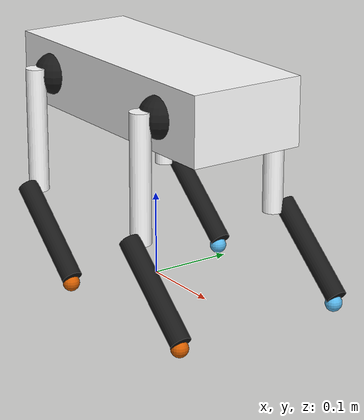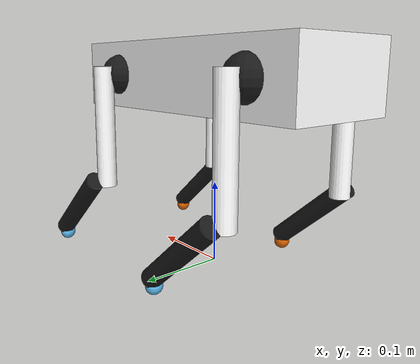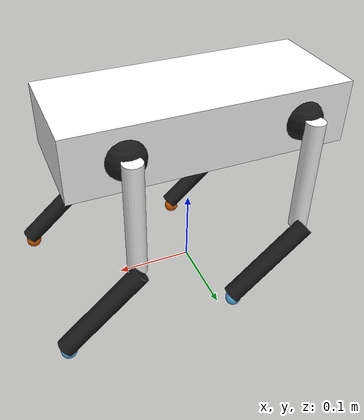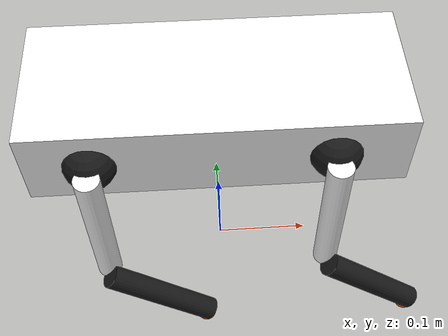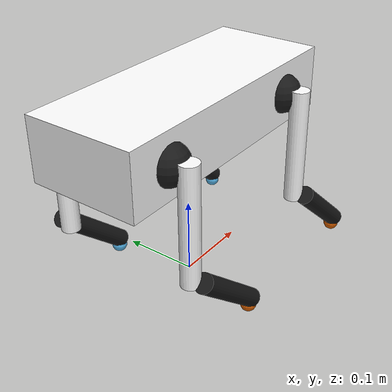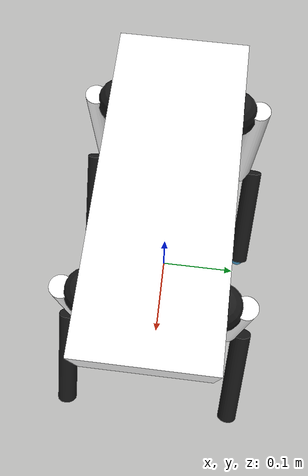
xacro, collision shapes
<?xml version="1.0"?>
<robot name="jax" xmlns:xacro="http://www.ros.org/wiki/xacro">

  <material name="black"><color rgba="0.1 0.1 0.1 1"/></material>
  <material name="white"><color rgba="1 1 1 1"/></material>

  <link name="world"/>

  <joint name="world_to_base" type="fixed">
    <parent link="world"/>
    <child link="base_link"/>
    <origin xyz="0 0 0.23"/>
  </joint>

  <link name="base_link">
    <visual>
      <geometry><mesh filename="package://jax_description/meshes/base_link.stl" scale=".001 .001 .001"/></geometry>
      <material name="white"/>
    </visual>
    <collision>
      <geometry><box size="0.35 0.14 0.08"/></geometry>
    </collision>
    <inertial>
      <mass value="4.0"/>
      <inertia ixx="0.03" iyy="0.06" izz="0.07" ixy="0" ixz="0" iyz="0"/>
    </inertial>
  </link>

  <xacro:macro name="jax_leg" params="prefix x_reflect y_reflect side">

    <link name="${prefix}_hip">
      <visual>
        <origin xyz="0 ${0.01 * y_reflect} 0.01"/>
        <geometry><mesh filename="package://jax_description/meshes/${side}_hip.stl" scale=".001 .001 .001"/></geometry>
        <material name="black"/>
      </visual>
      <collision>
        <origin xyz="0 ${-0.02 * y_reflect} 0"/>
        <geometry><sphere radius="0.025"/></geometry>
      </collision>
      <inertial>
        <mass value="0.15"/>
        <origin xyz="0 ${-0.02 * y_reflect} 0"/>
        <inertia ixx="0.0002" iyy="0.0002" izz="0.0002" ixy="0" ixz="0" iyz="0"/>
      </inertial>
    </link>

    <joint name="${prefix}_hip_joint" type="revolute">
      <parent link="base_link"/>
      <child link="${prefix}_hip"/>
     <origin xyz="${(0.11 * x_reflect) -.005} ${0.085 * y_reflect} 0.0"/>
      <axis xyz="1 0 0"/>
      <limit lower="-0.6" upper="0.6" effort="2.0" velocity="1.5"/>
      <dynamics damping="0.5" friction="0.0"/>
    </joint>

    <link name="${prefix}_thigh">
      <visual>
        <origin xyz="0 ${-0.038 * y_reflect} 0"/>
        <geometry><mesh filename="package://jax_description/meshes/${side}_thigh.stl" scale=".001 .001 .001"/></geometry>
        <material name="white"/>
      </visual>
      <collision>
        <origin xyz="0 ${-0.039 * y_reflect} -0.065"/>
        <geometry><cylinder radius="0.012" length="0.15"/></geometry>
      </collision>
      <inertial>
        <mass value="0.35"/>
        <origin xyz="0 ${-0.039 * y_reflect} -0.065"/>
        <inertia ixx="0.001" iyy="0.001" izz="0.0003" ixy="0" ixz="0" iyz="0"/>
      </inertial>
    </link>

    <joint name="${prefix}_thigh_joint" type="revolute">
      <parent link="${prefix}_hip"/>
      <child link="${prefix}_thigh"/>
      <origin xyz="0 ${0.045 * y_reflect} 0"/>
      <axis xyz="0 -1 0"/>
      <limit lower="-1.2" upper="1.2" effort="3.0" velocity="2.0"/>
      <dynamics damping="0.7" friction="0.0"/>
    </joint>

    <link name="${prefix}_calf">
      <visual>
        <origin xyz="0 ${-0.048 * y_reflect} 0"/>
        <geometry><mesh filename="package://jax_description/meshes/${side}_calf.stl" scale=".001 .001 .001"/></geometry>
        <material name="black"/>
      </visual>
      <collision>
        <origin xyz="0.05 ${-0.043 * y_reflect} -0.045" rpy="0 -0.85 0"/>
        <geometry><cylinder radius="0.012" length="0.13"/></geometry>
      </collision>
      <inertial>
        <mass value="0.25"/>
        <origin xyz="0.05 ${-0.043 * y_reflect} -0.045" rpy="0 -0.85 0"/>
        <inertia ixx="0.0007" iyy="0.0007" izz="0.0002" ixy="0" ixz="0" iyz="0"/>
      </inertial>
    </link>

    <joint name="${prefix}_knee_joint" type="revolute">
      <parent link="${prefix}_thigh"/>
      <child link="${prefix}_calf"/>
      <origin xyz="0 ${0.02 * y_reflect} -0.13"/>
      <axis xyz="0 -1 0"/>
      <limit lower="0" upper="1.4" effort="4.0" velocity="2.5"/>
      <dynamics damping="0.9" friction="0.0"/>
    </joint>

    <link name="${prefix}_foot">
      <collision>
        <origin xyz="0 0 0.005"/>
        <geometry><sphere radius="0.010"/></geometry>
      </collision>
    </link>

    <joint name="${prefix}_foot_fixed_joint" type="fixed">
      <parent link="${prefix}_calf"/>
      <child link="${prefix}_foot"/>
      <origin xyz="0.095 ${-0.044 * y_reflect} -0.1"/>
    </joint>

    <gazebo reference="${prefix}_foot">
      <mu1>1.2</mu1><mu2>1.2</mu2>
      <kp>100000.0</kp><kd>100.0</kd>
    </gazebo>
  </xacro:macro>

  <xacro:jax_leg prefix="front_right" x_reflect="1" y_reflect="-1" side="right"/>
  <xacro:jax_leg prefix="front_left" x_reflect="1" y_reflect="1" side="left"/>
  <xacro:jax_leg prefix="rear_right" x_reflect="-1" y_reflect="-1" side="right"/>
  <xacro:jax_leg prefix="rear_left" x_reflect="-1" y_reflect="1" side="left"/>

  <ros2_control name="JaxGazeboSystem" type="system">
    <hardware>
      <plugin>ign_ros2_control/IgnitionSystem</plugin>
    </hardware>
    <xacro:macro name="joint_interface" params="name">
      <joint name="${name}">
        <command_interface name="position"/>
        <state_interface name="position"/>
        <state_interface name="velocity"/>
      </joint>
    </xacro:macro>

    <xacro:joint_interface name="front_right_hip_joint"/><xacro:joint_interface name="front_right_thigh_joint"/><xacro:joint_interface name="front_right_knee_joint"/>
    <xacro:joint_interface name="front_left_hip_joint"/><xacro:joint_interface name="front_left_thigh_joint"/><xacro:joint_interface name="front_left_knee_joint"/>
    <xacro:joint_interface name="rear_right_hip_joint"/><xacro:joint_interface name="rear_right_thigh_joint"/><xacro:joint_interface name="rear_right_knee_joint"/>
    <xacro:joint_interface name="rear_left_hip_joint"/><xacro:joint_interface name="rear_left_thigh_joint"/><xacro:joint_interface name="rear_left_knee_joint"/>
  </ros2_control>

<gazebo>
  <plugin filename="ign_ros2_control-system" name="ign_ros2_control::IgnRos2ControlPlugin">
    <parameters>$(find jax_description)/config/controllers.yaml</parameters>
  </plugin>
</gazebo>

  <link name="imu_link">
    <inertial>
      <mass value="0.001"/>
      <origin xyz="0 0 0"/>
      <inertia ixx="1e-6" ixy="0" ixz="0" iyy="1e-6" iyz="0" izz="1e-6"/>
    </inertial>
  </link>

  <joint name="base_to_imu" type="fixed">
    <parent link="base_link"/>
    <child link="imu_link"/>
    <origin xyz="0 0 0.03" rpy="0 0 0"/>
  </joint>

  <gazebo reference="imu_link">
    <sensor name="imu_sensor" type="imu">
      <always_on>true</always_on>
      <update_rate>400</update_rate>
      <visualize>false</visualize>
      <imu>
        <angular_velocity>
          <noise type="gaussian">
            <mean>0.0</mean>
            <stddev>0.0002</stddev>
          </noise>
        </angular_velocity>
        <linear_acceleration>
          <noise type="gaussian">
            <mean>0.0</mean>
            <stddev>0.01</stddev>
          </noise>
        </linear_acceleration>
      </imu>
      <plugin name="imu_plugin" filename="libgazebo_ros_imu_sensor.so">
        <ros>
          <remapping>~/out:=imu</remapping>
        </ros>
      </plugin>
    </sensor>
  </gazebo>

</robot>
